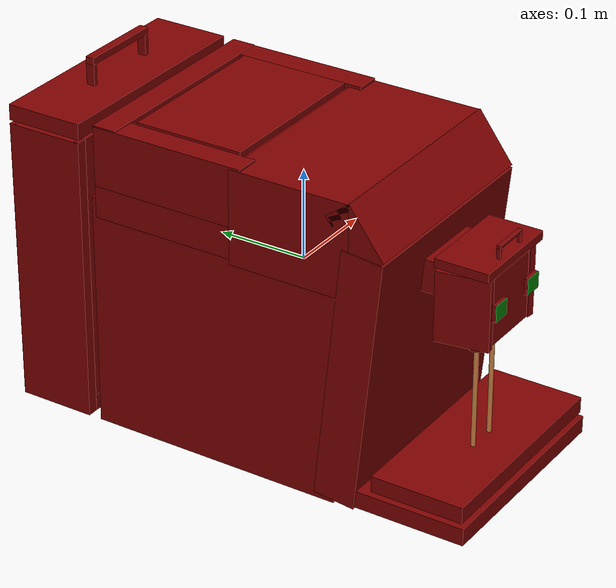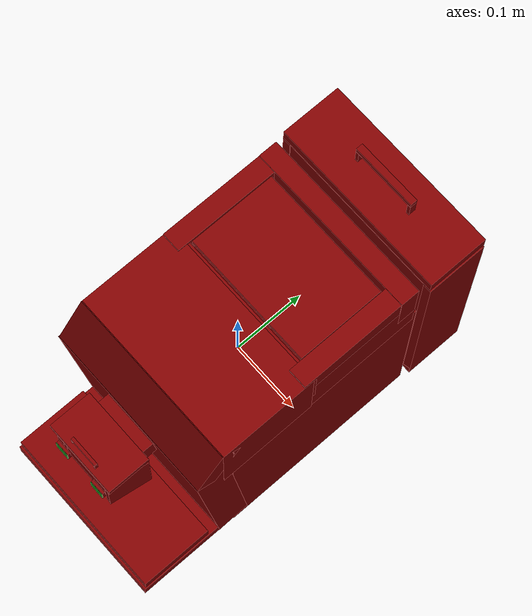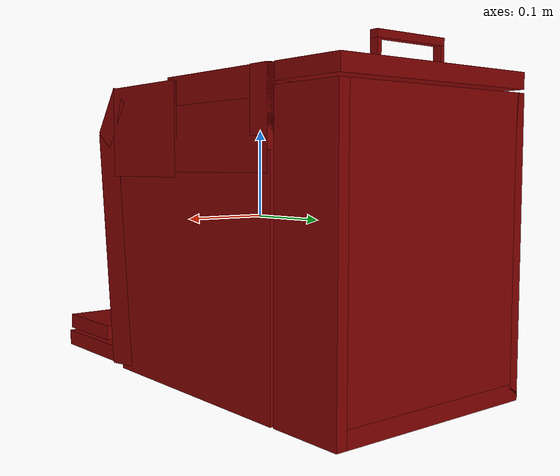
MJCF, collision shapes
<?xml version='1.0' encoding='UTF-8'?>
<mujoco model="model">
  <option timestep="0.002" gravity="0.0 0.0 -9.81"/>
  <compiler angle="radian"/>
  <asset>
    <mesh file="visuals/Body001.obj" name="Body001_vis"/>
    <mesh file="visuals/Button001.obj" name="Button001_vis"/>
    <mesh file="visuals/Button002.obj" name="Button002_vis"/>
    <mesh file="visuals/Container001_Clear.obj" name="Container001_Clear_vis"/>
    <mesh file="visuals/Lid001.obj" name="Lid001_vis"/>
    <mesh file="visuals/Lid002.obj" name="Lid002_vis"/>
    <mesh file="visuals/Lid003.obj" name="Lid003_vis"/>
    <mesh file="visuals/Lid004.obj" name="Lid004_vis"/>
    <texture file="visuals/T_BC001.png" name="Body001_material" type="2d"/>
    <material name="Body001_material" rgba="1 1 1 1.0" texture="Body001_material" shininess="0.1" specular="5"/>
    <texture file="visuals/T_BC001.png" name="Button001_material" type="2d"/>
    <material name="Button001_material" rgba="1 1 1 1.0" texture="Button001_material" shininess="0.1" specular="5"/>
    <texture file="visuals/T_BC001.png" name="Button002_material" type="2d"/>
    <material name="Button002_material" rgba="1 1 1 1.0" texture="Button002_material" shininess="0.1" specular="5"/>
    <texture file="visuals/T_BC001.png" name="Container001_Clear_material" type="2d"/>
    <material name="Container001_Clear_material" rgba="1 1 1 0.699999988079071" texture="Container001_Clear_material" shininess="0.4472135901451111" specular="0.3103448502657381"/>
    <texture file="visuals/T_BC001.png" name="Lid004_material" type="2d"/>
    <material name="Lid004_material" rgba="1 1 1 1.0" texture="Lid004_material" shininess="0.1" specular="5"/>
    <texture file="visuals/T_BC001.png" name="Lid001_material" type="2d"/>
    <material name="Lid001_material" rgba="1 1 1 1.0" texture="Lid001_material" shininess="0.1" specular="5"/>
    <texture file="visuals/T_BC001.png" name="Lid002_material" type="2d"/>
    <material name="Lid002_material" rgba="1 1 1 1.0" texture="Lid002_material" shininess="0.1" specular="5"/>
    <texture file="visuals/T_BC001.png" name="Lid003_material" type="2d"/>
    <material name="Lid003_material" rgba="1 1 1 1.0" texture="Lid003_material" shininess="0.1" specular="5"/>
  </asset>
  <default>
    <default class="visual">
      <geom conaffinity="0" contype="0" group="1" type="mesh"/>
    </default>
    <default class="collision">
      <geom group="0" rgba="0.5 0 0 0.5"/>
    </default>
    <default class="spawn">
      <geom group="0" rgba="1 1 1 0.5" contype="0" conaffinity="0"/>
      <site group="0" rgba="1 1 1 0.5"/>
    </default>
    <default class="region">
      <geom group="1" conaffinity="0" contype="0" rgba="0 1 0 0"/>
    </default>
  </default>
  <worldbody>
    <body>
      <body name="object">
        <geom class="collision" type="box" pos="-0.03277810 -0.24702284 0.03117188" size="0.010365952737629414 0.00039687592652626336 0.008961374871432781" quat="1.0 0.0 0.0 0.0" name="start_button_1" rgba="0.0 0.5 0 0.5"/>
        <geom class="collision" type="box" pos="0.03039741 -0.24702686 0.03125390" size="0.010388100519776344 0.0003994692815467715 0.008916223421692848" quat="1.0 0.0 0.0 0.0" name="start_button_2" rgba="0.0 0.5 0 0.5"/>
        <geom mesh="Body001_vis" type="mesh" solimp="0.998 0.998 0.001" solref="0.001 1" friction="0.95 0.3 0.1" class="visual" material="Body001_material"/>
        <geom class="collision" type="box" pos="-0.00079956 -0.13104488 -0.04166740" size="0.12418649345636368 0.023384904488921165 0.14223738014698029" quat="0.9986448884010315 0.05204177647829056 1.8828349623019795e-17 -4.988197395703159e-19"/>
        <geom class="collision" type="cylinder" pos="-0.01617602 -0.21258181 -0.02041707" size="0.008289889432489872 0.009650186635553837" quat="1.0 0.0 0.0 0.0"/>
        <geom class="collision" type="cylinder" pos="0.01544465 -0.21258181 -0.02041707" size="0.008289889432489872 0.009650186635553837" quat="1.0 0.0 0.0 0.0"/>
        <geom class="collision" type="box" pos="0.00000131 -0.20035318 -0.17397491" size="0.12336799502372742 0.06358985602855682 0.009515829384326935" quat="1.0 0.0 0.0 0.0"/>
        <geom class="collision" type="box" pos="0.00000131 0.02862743 -0.05654930" size="0.1233702301979065 0.14413173496723175 0.13094238936901093" quat="1.0 0.0 0.0 0.0"/>
        <geom class="collision" type="box" pos="0.00000131 -0.06144758 0.09927225" size="0.12343863397836685 0.06841201335191727 0.052273787558078766" quat="1.0 0.0 0.0 0.0"/>
        <geom class="collision" type="box" pos="0.00000131 0.07920269 0.08817737" size="0.12343679368495941 0.08908391743898392 0.03534024953842163" quat="1.0 0.0 0.0 0.0"/>
        <geom class="collision" type="box" pos="0.00000131 -0.13639206 0.11642957" size="0.12343863397836685 0.016342399641871452 0.03268228843808174" quat="0.3122599422931671 0.9499967098236084 1.1613617346411883e-23 -6.933561566806467e-17"/>
        <geom class="collision" type="box" pos="-0.00088095 -0.23598468 0.02737226" size="0.04432997852563858 0.0020263853948563337 0.039324481040239334" quat="1.0 0.0 0.0 0.0"/>
        <geom class="collision" type="box" pos="-0.00093327 -0.17053027 0.04890529" size="0.040293291211128235 0.01328221708536148 0.01780789904296398" quat="1.0 0.0 0.0 0.0"/>
        <geom class="collision" type="box" pos="0.00000131 0.15497166 0.12159006" size="0.12343762069940567 0.013314936310052872 0.033546287566423416" quat="1.0 0.0 0.0 0.0"/>
        <geom class="collision" type="box" pos="-0.00053904 0.03835376 0.11763922" size="0.03857843577861786 0.03424255922436714 0.02959546633064747" quat="1.0 0.0 0.0 0.0"/>
        <geom class="collision" type="box" pos="-0.10990709 0.08078247 0.12090885" size="0.013529595918953419 0.08750413358211517 0.03286510333418846" quat="1.0 0.0 0.0 0.0"/>
        <geom class="collision" type="box" pos="0.10945836 0.08078247 0.12136628" size="0.013529603369534016 0.08750413358211517 0.033322542905807495" quat="1.0 0.0 0.0 0.0"/>
        <geom class="collision" type="box" pos="0.00000131 -0.00511359 0.11892665" size="0.12343785166740417 0.015962105244398117 0.030882928520441055" quat="1.0 0.0 0.0 0.0"/>
        <geom class="collision" type="box" pos="-0.04574231 -0.21286230 0.02692528" size="0.004310887306928635 0.028898626565933228 0.03887750953435898" quat="0.9970703721046448 0.0 0.0 0.07648999243974686"/>
        <geom class="collision" type="box" pos="0.04475864 -0.21179524 0.02692528" size="0.004310887306928635 0.028898626565933228 0.03887750953435898" quat="0.9970703721046448 0.0 -0.0 -0.07649000734090805"/>
        <geom class="collision" type="box" pos="-0.00088095 -0.21019919 0.02043218" size="0.04432974383234978 0.026971854269504547 0.03238440677523613" quat="1.0 0.0 0.0 0.0"/>
        <geom class="collision" type="box" pos="-0.00088095 -0.18451279 0.02736832" size="0.04432972893118858 0.0020263853948563337 0.03932054713368416" quat="1.0 0.0 0.0 0.0"/>
        <body name="Button001">
          <joint axis="0.0 1.0 0.0" pos="-0.03272741 -0.24426828 0.03109809" limited="true" name="Button001_joint" range="0.0 0.003" type="slide" damping="1" frictionloss="1" armature=".01" stiffness="0.05"/>
          <geom mesh="Button001_vis" type="mesh" solimp="0.998 0.998 0.001" solref="0.001 1" friction="0.95 0.3 0.1" class="visual" material="Button001_material"/>
          <geom class="collision" type="box" pos="-0.03277810 -0.24445345 0.03117188" size="0.010365952737629414 0.001881095813587308 0.008961409330368042" quat="1.0 0.0 0.0 0.0"/>
        </body>
        <body name="Button002">
          <joint axis="0.0 1.0 0.0" pos="0.03040877 -0.24426813 0.03103423" limited="true" name="Button002_joint" range="0.0 0.003" type="slide" damping="1" frictionloss="1" armature=".01" stiffness="0.05"/>
          <geom mesh="Button002_vis" type="mesh" solimp="0.998 0.998 0.001" solref="0.001 1" friction="0.95 0.3 0.1" class="visual" material="Button002_material"/>
          <geom class="collision" type="box" pos="0.03039741 -0.24444944 0.03125390" size="0.010388100519776344 0.001885919482447207 0.008916257880628109" quat="1.0 0.0 0.0 0.0"/>
        </body>
        <body name="Container001_Clear">
          <geom mesh="Container001_Clear_vis" type="mesh" solimp="0.998 0.998 0.001" solref="0.001 1" friction="0.95 0.3 0.1" class="visual" material="Container001_Clear_material"/>
          <geom class="collision" type="box" pos="-0.12213637 0.22671829 -0.02588235" size="0.006022981368005276 0.04276315122842789 0.15839701890945435" quat="1.0 0.0 0.0 0.0"/>
          <geom class="collision" type="box" pos="0.12270178 0.22671829 -0.02588235" size="0.006022981368005276 0.04276315122842789 0.15839701890945435" quat="1.0 0.0 0.0 0.0"/>
          <geom class="collision" type="box" pos="0.00058116 0.26598537 -0.02588235" size="0.1277509480714798 0.0034960575867444277 0.15839701890945435" quat="1.0 0.0 0.0 0.0"/>
          <geom class="collision" type="box" pos="0.00058116 0.18823653 -0.02588235" size="0.1277509480714798 0.0034960575867444277 0.15839701890945435" quat="1.0 0.0 0.0 0.0"/>
          <geom class="collision" type="box" pos="-0.00009430 0.22671829 -0.17501872" size="0.12759384512901306 0.04276315122842789 0.009260643273591995" quat="1.0 0.0 0.0 0.0"/>
          <body name="Lid004">
            <geom mesh="Lid004_vis" type="mesh" solimp="0.998 0.998 0.001" solref="0.001 1" friction="0.95 0.3 0.1" class="visual" material="Lid004_material"/>
            <geom class="collision" type="box" pos="0.00000000 0.22664431 0.14481170" size="0.12762826681137085 0.042917173355817795 0.008660576306283474" quat="1.0 0.0 0.0 0.0"/>
            <geom class="collision" type="box" pos="0.04415660 0.22821458 0.16407102" size="0.0024624888319522142 0.0048407018184661865 0.012383795343339443" quat="1.0 0.0 0.0 0.0"/>
            <geom class="collision" type="box" pos="-0.04423017 0.22821458 0.16407100" size="0.0024624888319522142 0.0048407018184661865 0.012383794412016869" quat="1.0 0.0 0.0 0.0"/>
            <geom class="collision" type="box" pos="0.00000000 0.22821458 0.18028548" size="0.046692654490470886 0.0048407018184661865 0.003866489278152585" quat="1.0 0.0 0.0 0.0"/>
          </body>
        </body>
        <body name="Lid001">
          <joint axis="1.0 0.0 0.0" pos="0.00000375 0.00902189 0.15152376" limited="true" name="Lid001_joint" range="0.0 1.5707963267948966" type="hinge" damping="1" frictionloss="1" armature=".01" stiffness="0.05"/>
          <geom mesh="Lid001_vis" type="mesh" solimp="0.998 0.998 0.001" solref="0.001 1" friction="0.95 0.3 0.1" class="visual" material="Lid001_material"/>
          <geom class="collision" type="box" pos="0.00044029 0.07383892 0.15178419" size="0.0946911945939064 0.06126794219017029 0.003488620975986123" quat="1.0 0.0 0.0 0.0"/>
        </body>
        <body name="Lid002">
          <geom mesh="Lid002_vis" type="mesh" solimp="0.998 0.998 0.001" solref="0.001 1" friction="0.95 0.3 0.1" class="visual" material="Lid002_material"/>
          <geom class="collision" type="box" pos="0.00063344 -0.20927380 -0.15118849" size="0.12173115462064743 0.05168413370847702 0.009040155448019505" quat="1.0 0.0 0.0 0.0"/>
        </body>
        <body name="Lid003">
          <joint axis="-1.0 0.0 0.0" pos="-0.00045279 -0.18430237 0.06775667" limited="true" name="Lid003_joint" range="0.0 1.5707963267948966" type="hinge" damping="1" frictionloss="1" armature=".01" stiffness="0.05"/>
          <geom mesh="Lid003_vis" type="mesh" solimp="0.998 0.998 0.001" solref="0.001 1" friction="0.95 0.3 0.1" class="visual" material="Lid003_material"/>
          <geom class="collision" type="box" pos="-0.00031635 -0.21336108 0.07383061" size="0.05325286462903023 0.030133746564388275 0.004937498364597559" quat="1.0 0.0 0.0 0.0"/>
          <geom class="collision" type="box" pos="0.02009840 -0.23522358 0.08393444" size="0.001121948123909533 0.002205498982220888 0.0056422497145831585" quat="1.0 0.0 0.0 0.0"/>
          <geom class="collision" type="box" pos="-0.02017198 -0.23522358 0.08393443" size="0.001121948123909533 0.002205498982220888 0.005642249248921871" quat="1.0 0.0 0.0 0.0"/>
          <geom class="collision" type="box" pos="-0.00002003 -0.23522358 0.09132200" size="0.02127389796078205 0.002205498982220888 0.0017616326222196221" quat="1.0 0.0 0.0 0.0"/>
        </body>
        <site type="cylinder" rgba="0.8 0.5 0.25 1" size="0.0025506746023893356 0.08439545333385468" pos="-0.01722473 -0.21304743 -0.09830014" name="coffee_liquid_left"/>
        <site type="cylinder" rgba="0.8 0.5 0.25 1" size="0.0025484999641776085 0.08385958522558212" pos="0.01484864 -0.21315731 -0.09846249" name="coffee_liquid_right"/>
        <site rgba="0 0 0 0" size="0.019999999552965164 0.019999999552965164" pos="-0.0011000449999999991 -0.213318065 -0.14946408" name="receptacle_place_site"/>
        <geom class="region" name="reg_main" type="box" pos="0.0 1.0000000022492017e-08 -0.014302505000000007" size="0.12811106 0.26894103 0.17084938500000002"/>
      </body>
    </body>
  </worldbody>
  <actuator>
    <motor name="Button001_joint_actuator" joint="Button001_joint" gear="0.5"/>
    <motor name="Button002_joint_actuator" joint="Button002_joint" gear="0.5"/>
    <motor name="Lid001_joint_actuator" joint="Lid001_joint" gear="10"/>
    <motor name="Lid003_joint_actuator" joint="Lid003_joint" gear="10"/>
  </actuator>
</mujoco>
